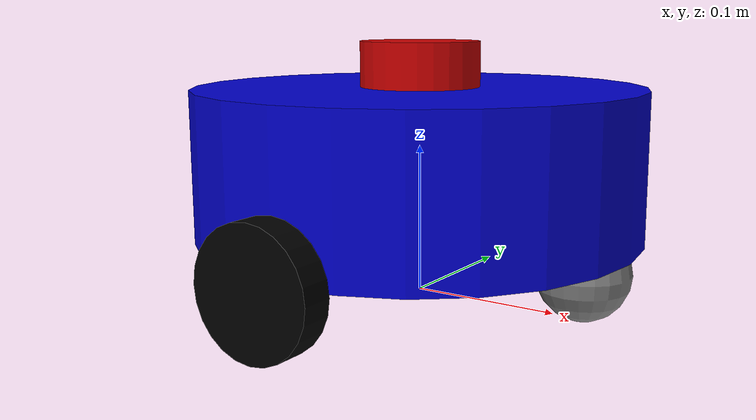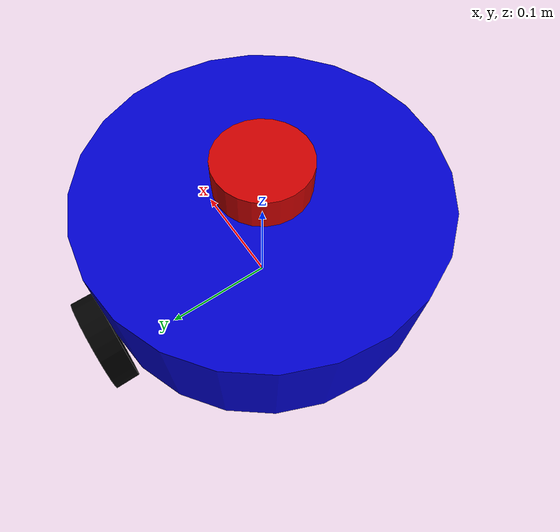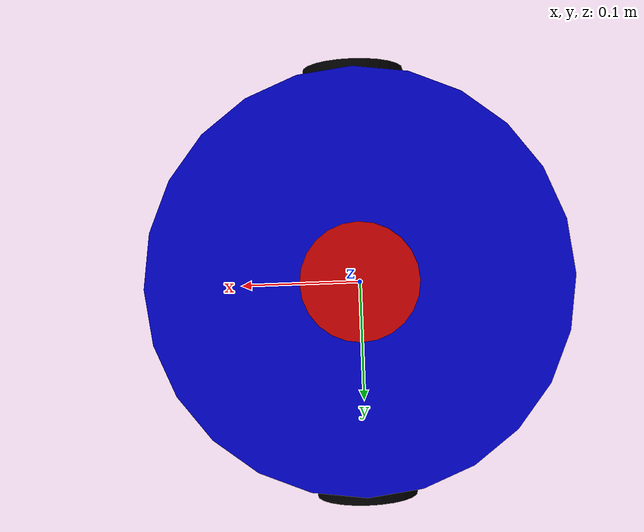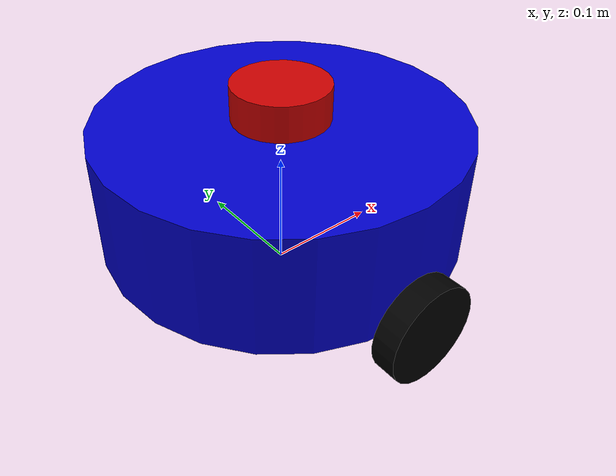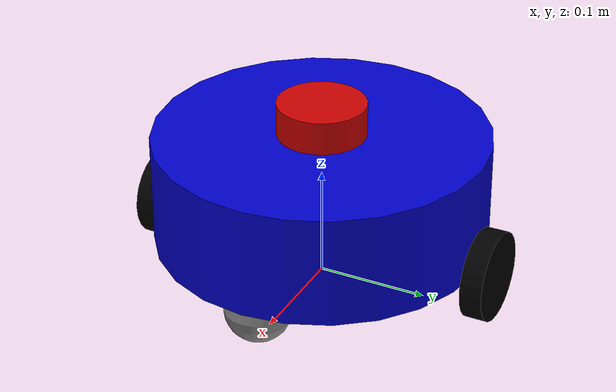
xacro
<?xml version="1.0"?>
<robot xmlns:xacro="http://www.ros.org/wiki/xacro" name="dif_bot">

  <!-- Incluir configuracion de control Gazebo -->
  <xacro:include filename="$(find dif_bot_description)/urdf/gz_control.xacro"/>

  <xacro:property name="base_radius" value="0.15"/>
  <xacro:property name="base_height" value="0.10"/>
  <xacro:property name="wheel_radius" value="0.04"/>
  <xacro:property name="wheel_length" value="0.02"/>
  <xacro:property name="wheel_offset_y" value="0.16"/>
  <xacro:property name="caster_radius" value="0.03"/>
  <xacro:property name="lidar_radius" value="0.04"/>
  <xacro:property name="lidar_height" value="0.03"/>
  <xacro:property name="camera_length" value="0.02"/>
  <xacro:property name="camera_width" value="0.08"/>
  <xacro:property name="camera_height" value="0.02"/>

  <!-- MACRO INERCIA -->
  <xacro:macro name="dummy_inertia" params="mass">
    <inertial>
      <mass value="${mass}"/>
      <inertia ixx="0.01" ixy="0.0" ixz="0.0" iyy="0.01" iyz="0.0" izz="0.01"/>
    </inertial>
  </xacro:macro>

  <link name="base_footprint"/>

  <joint name="base_footprint_joint" type="fixed">
    <parent link="base_footprint"/>
    <child link="base_link"/>
    <origin xyz="0 0 ${wheel_radius}" rpy="0 0 0"/>
  </joint>

  <!-- Chasis -->
  <link name="base_link">
    <visual>
      <origin xyz="0 0 ${base_height/2.0}" rpy="0 0 0"/>
      <geometry>
        <cylinder radius="${base_radius}" length="${base_height}"/>
      </geometry>
      <material name="blue">
        <color rgba="0 0 0.8 1"/>
      </material>
    </visual>
    <collision>
      <origin xyz="0 0 ${base_height/2.0}" rpy="0 0 0"/>
      <geometry>
        <cylinder radius="${base_radius}" length="${base_height}"/>
      </geometry>
    </collision>
    <xacro:dummy_inertia mass="2.0"/>
  </link>

  <!-- Ruedas -->
  <xacro:macro name="wheel" params="prefix side">
    <link name="${prefix}_wheel_link">
      <visual>
        <origin xyz="0 0 0" rpy="${pi/2.0} 0 0"/>
        <geometry>
          <cylinder radius="${wheel_radius}" length="${wheel_length}"/>
        </geometry>
        <material name="black">
          <color rgba="0 0 0 1"/>
        </material>
      </visual>
      <collision>
        <origin xyz="0 0 0" rpy="${pi/2.0} 0 0"/>
        <geometry>
          <cylinder radius="${wheel_radius}" length="${wheel_length}"/>
        </geometry>
      </collision>
      <xacro:dummy_inertia mass="0.5"/>
    </link>
    <joint name="${prefix}_wheel_joint" type="continuous">
      <parent link="base_link"/>
      <child link="${prefix}_wheel_link"/>
      <origin xyz="0 ${side * wheel_offset_y} 0" rpy="0 0 0"/>
      <axis xyz="0 1 0"/>
    </joint>
  </xacro:macro>

  <xacro:wheel prefix="left" side="1"/>
  <xacro:wheel prefix="right" side="-1"/>

  <!-- Caster -->
  <link name="caster_wheel_link">
    <visual>
      <origin xyz="0 0 0" rpy="0 0 0"/>
      <geometry>
        <sphere radius="${caster_radius}"/>
      </geometry>
      <material name="gray">
        <color rgba="0.5 0.5 0.5 1"/>
      </material>
    </visual>
    <collision>
      <origin xyz="0 0 0" rpy="0 0 0"/>
      <geometry>
        <sphere radius="${caster_radius}"/>
      </geometry>
    </collision>
    <xacro:dummy_inertia mass="0.2"/>
  </link>
  <joint name="caster_wheel_joint" type="fixed">
    <parent link="base_link"/>
    <child link="caster_wheel_link"/>
    <origin xyz="${base_radius - caster_radius} 0 ${-wheel_radius + caster_radius}" rpy="0 0 0"/>
  </joint>

  <!-- Lidar Link y Plugin -->
  <link name="lidar_link">
    <visual>
      <origin xyz="0 0 0" rpy="0 0 0"/>
      <geometry>
        <cylinder radius="${lidar_radius}" length="${lidar_height}"/>
      </geometry>
      <material name="red">
        <color rgba="0.8 0 0 1"/>
      </material>
    </visual>
    <collision>
      <origin xyz="0 0 0" rpy="0 0 0"/>
      <geometry>
        <cylinder radius="${lidar_radius}" length="${lidar_height}"/>
      </geometry>
    </collision>
    <xacro:dummy_inertia mass="0.1"/>
  </link>

  <joint name="lidar_joint" type="fixed">
    <parent link="base_link"/>
    <child link="lidar_link"/>
    <origin xyz="0 0 ${base_height + (lidar_height/2.0)}" rpy="0 0 0"/>
  </joint>

  <gazebo reference="lidar_link">
    <sensor name="gpu_lidar" type="gpu_lidar">
      <update_rate>20</update_rate>
      <topic>scan</topic>
      <gz_frame_id>lidar_link</gz_frame_id>
      <lidar>
        <scan>
          <horizontal>
            <samples>720</samples>
            <resolution>1</resolution>
            <min_angle>-2.35619</min_angle>
            <max_angle>2.35619</max_angle>
          </horizontal>
        </scan>
        <range>
          <min>0.10</min>
          <max>12.0</max>
        </range>
      </lidar>
      <always_on>true</always_on>
      <visualize>true</visualize>
    </sensor>
  </gazebo>

</robot>
